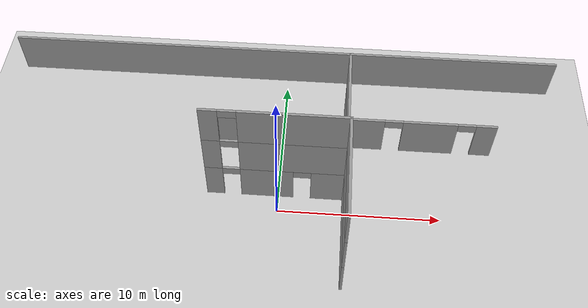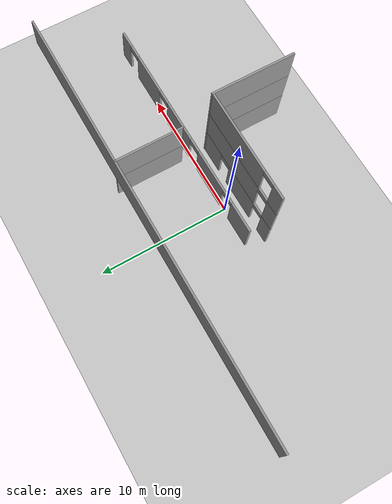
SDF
<sdf version="1.6">
 <world name="default">
  <model name="ground_plane">
   <static>1</static>
   <link name="link">
    <collision name="collision">
     <geometry><plane><normal>0 0 1</normal><size>100 100</size></plane></geometry>
     <surface>
      <contact><collide_bitmask>65535</collide_bitmask></contact>
      <friction><ode><mu>100</mu><mu2>50</mu2></ode></friction>
     </surface>
    </collision>
    <visual name="visual">
     <cast_shadows>0</cast_shadows>
     <geometry><plane><normal>0 0 1</normal><size>100 100</size></plane></geometry>
     <material>
      <script><uri>file://media/materials/scripts/gazebo.material</uri><name>Gazebo/Grey</name></script>
     </material>
    </visual>
   </link>
  </model>
  <model name="floor2plan_v2">
   <link name="Wall_105">
    <pose>4.0241 1.47672 5 0 -0 0</pose>
    <visual name="Wall_105_Visual_0">
     <pose>-7.0665 0 1.25 0 -0 0</pose>
     <geometry><box><size>2.117 0.15 2.5</size></box></geometry>
     <material>
      <script><uri>file://media/materials/scripts/gazebo.material</uri><name>Gazebo/Grey</name></script>
      <ambient>1 1 1 1</ambient>
      <shader type="pixel"/>
      <diffuse>0.7 0.7 0.7 1</diffuse>
      <specular>0.01 0.01 0.01 1</specular>
      <emissive>0 0 0 1</emissive>
     </material>
     <meta><layer>2</layer></meta>
    </visual>
    <visual name="Wall_105_Visual_1">
     <pose>-3.4955 0 1.25 0 -0 0</pose>
     <geometry><box><size>3.025 0.15 2.5</size></box></geometry>
     <material>
      <script><uri>file://media/materials/scripts/gazebo.material</uri><name>Gazebo/Grey</name></script>
      <ambient>1 1 1 1</ambient>
      <shader type="pixel"/>
      <diffuse>0.7 0.7 0.7 1</diffuse>
      <specular>0.01 0.01 0.01 1</specular>
      <emissive>0 0 0 1</emissive>
     </material>
     <meta><layer>2</layer></meta>
    </visual>
    <visual name="Wall_105_Visual_2">
     <pose>0.495 0 1.25 0 -0 0</pose>
     <geometry><box><size>2.956 0.15 2.5</size></box></geometry>
     <material>
      <script><uri>file://media/materials/scripts/gazebo.material</uri><name>Gazebo/Grey</name></script>
      <ambient>1 1 1 1</ambient>
      <shader type="pixel"/>
      <diffuse>0.7 0.7 0.7 1</diffuse>
      <specular>0.01 0.01 0.01 1</specular>
      <emissive>0 0 0 1</emissive>
     </material>
     <meta><layer>2</layer></meta>
    </visual>
    <visual name="Wall_105_Visual_3">
     <pose>4.474 0 1.25 0 -0 0</pose>
     <geometry><box><size>3.002 0.15 2.5</size></box></geometry>
     <material>
      <script><uri>file://media/materials/scripts/gazebo.material</uri><name>Gazebo/Grey</name></script>
      <ambient>1 1 1 1</ambient>
      <shader type="pixel"/>
      <diffuse>0.7 0.7 0.7 1</diffuse>
      <specular>0.01 0.01 0.01 1</specular>
      <emissive>0 0 0 1</emissive>
     </material>
     <meta><layer>2</layer></meta>
    </visual>
    <visual name="Wall_105_Visual_4">
     <pose>7.55 0 1.25 0 -0 0</pose>
     <geometry><box><size>1.15 0.15 2.5</size></box></geometry>
     <material>
      <script><uri>file://media/materials/scripts/gazebo.material</uri><name>Gazebo/Grey</name></script>
      <ambient>1 1 1 1</ambient>
      <shader type="pixel"/>
      <diffuse>0.7 0.7 0.7 1</diffuse>
      <specular>0.01 0.01 0.01 1</specular>
      <emissive>0 0 0 1</emissive>
     </material>
     <meta><layer>2</layer></meta>
    </visual>
    <visual name="Wall_105_Visual_5">
     <pose>-5.508 0 2.25 0 -0 0</pose>
     <geometry><box><size>1 0.15 0.5</size></box></geometry>
     <material>
      <script><uri>file://media/materials/scripts/gazebo.material</uri><name>Gazebo/Grey</name></script>
      <ambient>1 1 1 1</ambient>
      <shader type="pixel"/>
      <diffuse>0.7 0.7 0.7 1</diffuse>
      <specular>0.01 0.01 0.01 1</specular>
      <emissive>0 0 0 1</emissive>
     </material>
     <meta><layer>2</layer></meta>
    </visual>
    <visual name="Wall_105_Visual_6">
     <pose>-1.483 0 2.25 0 -0 0</pose>
     <geometry><box><size>1 0.15 0.5</size></box></geometry>
     <material>
      <script><uri>file://media/materials/scripts/gazebo.material</uri><name>Gazebo/Grey</name></script>
      <ambient>1 1 1 1</ambient>
      <shader type="pixel"/>
      <diffuse>0.7 0.7 0.7 1</diffuse>
      <specular>0.01 0.01 0.01 1</specular>
      <emissive>0 0 0 1</emissive>
     </material>
     <meta><layer>2</layer></meta>
    </visual>
    <visual name="Wall_105_Visual_7">
     <pose>2.473 0 2.25 0 -0 0</pose>
     <geometry><box><size>1 0.15 0.5</size></box></geometry>
     <material>
      <script><uri>file://media/materials/scripts/gazebo.material</uri><name>Gazebo/Grey</name></script>
      <ambient>1 1 1 1</ambient>
      <shader type="pixel"/>
      <diffuse>0.7 0.7 0.7 1</diffuse>
      <specular>0.01 0.01 0.01 1</specular>
      <emissive>0 0 0 1</emissive>
     </material>
     <meta><layer>2</layer></meta>
    </visual>
    <visual name="Wall_105_Visual_8">
     <pose>6.475 0 2.25 0 -0 0</pose>
     <geometry><box><size>1 0.15 0.5</size></box></geometry>
     <material>
      <script><uri>file://media/materials/scripts/gazebo.material</uri><name>Gazebo/Grey</name></script>
      <ambient>1 1 1 1</ambient>
      <shader type="pixel"/>
      <diffuse>0.7 0.7 0.7 1</diffuse>
      <specular>0.01 0.01 0.01 1</specular>
      <emissive>0 0 0 1</emissive>
     </material>
     <meta><layer>2</layer></meta>
    </visual>
    <collision name="Wall_105_Collision_0">
     <pose>-7.0665 0 1.25 0 -0 0</pose>
     <geometry><box><size>2.117 0.15 2.5</size></box></geometry>
     <surface>
      <friction>
       <ode><mu>1</mu><mu2>1</mu2><fdir1>0 0 0</fdir1><slip1>0</slip1><slip2>0</slip2></ode>
       <torsional>
        <coefficient>1</coefficient>
        <patch_radius>0</patch_radius>
        <surface_radius>0</surface_radius>
        <use_patch_radius>1</use_patch_radius>
        <ode><slip>0</slip></ode>
       </torsional>
      </friction>
      <bounce><restitution_coefficient>0</restitution_coefficient><threshold>1e+06</threshold></bounce>
      <contact>
       <collide_without_contact>0</collide_without_contact>
       <collide_without_contact_bitmask>1</collide_without_contact_bitmask>
       <collide_bitmask>1</collide_bitmask>
       <ode>
        <soft_cfm>0</soft_cfm>
        <soft_erp>0.2</soft_erp>
        <kp>1e+13</kp>
        <kd>1</kd>
        <max_vel>0.01</max_vel>
        <min_depth>0</min_depth>
       </ode>
       <bullet>
        <split_impulse>1</split_impulse>
        <split_impulse_penetration_threshold>-0.01</split_impulse_penetration_threshold>
        <soft_cfm>0</soft_cfm>
        <soft_erp>0.2</soft_erp>
        <kp>1e+13</kp>
        <kd>1</kd>
       </bullet>
      </contact>
     </surface>
    </collision>
    <collision name="Wall_105_Collision_1">
     <pose>-3.4955 0 1.25 0 -0 0</pose>
     <geometry><box><size>3.025 0.15 2.5</size></box></geometry>
     <surface>
      <friction>
       <ode><mu>1</mu><mu2>1</mu2><fdir1>0 0 0</fdir1><slip1>0</slip1><slip2>0</slip2></ode>
       <torsional>
        <coefficient>1</coefficient>
        <patch_radius>0</patch_radius>
        <surface_radius>0</surface_radius>
        <use_patch_radius>1</use_patch_radius>
        <ode><slip>0</slip></ode>
       </torsional>
      </friction>
      <bounce><restitution_coefficient>0</restitution_coefficient><threshold>1e+06</threshold></bounce>
      <contact>
       <collide_without_contact>0</collide_without_contact>
       <collide_without_contact_bitmask>1</collide_without_contact_bitmask>
       <collide_bitmask>1</collide_bitmask>
       <ode>
        <soft_cfm>0</soft_cfm>
        <soft_erp>0.2</soft_erp>
        <kp>1e+13</kp>
        <kd>1</kd>
        <max_vel>0.01</max_vel>
        <min_depth>0</min_depth>
       </ode>
       <bullet>
        <split_impulse>1</split_impulse>
        <split_impulse_penetration_threshold>-0.01</split_impulse_penetration_threshold>
        <soft_cfm>0</soft_cfm>
        <soft_erp>0.2</soft_erp>
        <kp>1e+13</kp>
        <kd>1</kd>
       </bullet>
      </contact>
     </surface>
    </collision>
    <collision name="Wall_105_Collision_2">
     <pose>0.495 0 1.25 0 -0 0</pose>
     <geometry><box><size>2.956 0.15 2.5</size></box></geometry>
     <surface>
      <friction>
       <ode><mu>1</mu><mu2>1</mu2><fdir1>0 0 0</fdir1><slip1>0</slip1><slip2>0</slip2></ode>
       <torsional>
        <coefficient>1</coefficient>
        <patch_radius>0</patch_radius>
        <surface_radius>0</surface_radius>
        <use_patch_radius>1</use_patch_radius>
        <ode><slip>0</slip></ode>
       </torsional>
      </friction>
      <bounce><restitution_coefficient>0</restitution_coefficient><threshold>1e+06</threshold></bounce>
      <contact>
       <collide_without_contact>0</collide_without_contact>
       <collide_without_contact_bitmask>1</collide_without_contact_bitmask>
       <collide_bitmask>1</collide_bitmask>
       <ode>
        <soft_cfm>0</soft_cfm>
        <soft_erp>0.2</soft_erp>
        <kp>1e+13</kp>
        <kd>1</kd>
        <max_vel>0.01</max_vel>
        <min_depth>0</min_depth>
       </ode>
       <bullet>
        <split_impulse>1</split_impulse>
        <split_impulse_penetration_threshold>-0.01</split_impulse_penetration_threshold>
        <soft_cfm>0</soft_cfm>
        <soft_erp>0.2</soft_erp>
        <kp>1e+13</kp>
        <kd>1</kd>
       </bullet>
      </contact>
     </surface>
    </collision>
    <collision name="Wall_105_Collision_3">
     <pose>4.474 0 1.25 0 -0 0</pose>
     <geometry><box><size>3.002 0.15 2.5</size></box></geometry>
     <surface>
      <friction>
       <ode><mu>1</mu><mu2>1</mu2><fdir1>0 0 0</fdir1><slip1>0</slip1><slip2>0</slip2></ode>
       <torsional>
        <coefficient>1</coefficient>
        <patch_radius>0</patch_radius>
        <surface_radius>0</surface_radius>
        <use_patch_radius>1</use_patch_radius>
        <ode><slip>0</slip></ode>
       </torsional>
      </friction>
      <bounce><restitution_coefficient>0</restitution_coefficient><threshold>1e+06</threshold></bounce>
      <contact>
       <collide_without_contact>0</collide_without_contact>
       <collide_without_contact_bitmask>1</collide_without_contact_bitmask>
       <collide_bitmask>1</collide_bitmask>
       <ode>
        <soft_cfm>0</soft_cfm>
        <soft_erp>0.2</soft_erp>
        <kp>1e+13</kp>
        <kd>1</kd>
        <max_vel>0.01</max_vel>
        <min_depth>0</min_depth>
       </ode>
       <bullet>
        <split_impulse>1</split_impulse>
        <split_impulse_penetration_threshold>-0.01</split_impulse_penetration_threshold>
        <soft_cfm>0</soft_cfm>
        <soft_erp>0.2</soft_erp>
        <kp>1e+13</kp>
        <kd>1</kd>
       </bullet>
      </contact>
     </surface>
    </collision>
    <collision name="Wall_105_Collision_4">
     <pose>7.55 0 1.25 0 -0 0</pose>
     <geometry><box><size>1.15 0.15 2.5</size></box></geometry>
     <surface>
      <friction>
       <ode><mu>1</mu><mu2>1</mu2><fdir1>0 0 0</fdir1><slip1>0</slip1><slip2>0</slip2></ode>
       <torsional>
        <coefficient>1</coefficient>
        <patch_radius>0</patch_radius>
        <surface_radius>0</surface_radius>
        <use_patch_radius>1</use_patch_radius>
        <ode><slip>0</slip></ode>
       </torsional>
      </friction>
      <bounce><restitution_coefficient>0</restitution_coefficient><threshold>1e+06</threshold></bounce>
      <contact>
       <collide_without_contact>0</collide_without_contact>
       <collide_without_contact_bitmask>1</collide_without_contact_bitmask>
       <collide_bitmask>1</collide_bitmask>
       <ode>
        <soft_cfm>0</soft_cfm>
        <soft_erp>0.2</soft_erp>
        <kp>1e+13</kp>
        <kd>1</kd>
        <max_vel>0.01</max_vel>
        <min_depth>0</min_depth>
       </ode>
       <bullet>
        <split_impulse>1</split_impulse>
        <split_impulse_penetration_threshold>-0.01</split_impulse_penetration_threshold>
        <soft_cfm>0</soft_cfm>
        <soft_erp>0.2</soft_erp>
        <kp>1e+13</kp>
        <kd>1</kd>
       </bullet>
      </contact>
     </surface>
    </collision>
    <collision name="Wall_105_Collision_5">
     <pose>-5.508 0 2.25 0 -0 0</pose>
     <geometry><box><size>1 0.15 0.5</size></box></geometry>
     <surface>
      <friction>
       <ode><mu>1</mu><mu2>1</mu2><fdir1>0 0 0</fdir1><slip1>0</slip1><slip2>0</slip2></ode>
       <torsional>
        <coefficient>1</coefficient>
        <patch_radius>0</patch_radius>
        <surface_radius>0</surface_radius>
        <use_patch_radius>1</use_patch_radius>
        <ode><slip>0</slip></ode>
       </torsional>
      </friction>
      <bounce><restitution_coefficient>0</restitution_coefficient><threshold>1e+06</threshold></bounce>
      <contact>
       <collide_without_contact>0</collide_without_contact>
       <collide_without_contact_bitmask>1</collide_without_contact_bitmask>
       <collide_bitmask>1</collide_bitmask>
       <ode>
        <soft_cfm>0</soft_cfm>
        <soft_erp>0.2</soft_erp>
        <kp>1e+13</kp>
        <kd>1</kd>
        <max_vel>0.01</max_vel>
        <min_depth>0</min_depth>
       </ode>
       <bullet>
        <split_impulse>1</split_impulse>
        <split_impulse_penetration_threshold>-0.01</split_impulse_penetration_threshold>
        <soft_cfm>0</soft_cfm>
        <soft_erp>0.2</soft_erp>
        <kp>1e+13</kp>
        <kd>1</kd>
       </bullet>
      </contact>
     </surface>
    </collision>
    <collision name="Wall_105_Collision_8">
     <pose>6.475 0 2.25 0 -0 0</pose>
     <geometry><box><size>1 0.15 0.5</size></box></geometry>
     <surface>
      <friction>
       <ode><mu>1</mu><mu2>1</mu2><fdir1>0 0 0</fdir1><slip1>0</slip1><slip2>0</slip2></ode>
       <torsional>
        <coefficient>1</coefficient>
        <patch_radius>0</patch_radius>
        <surface_radius>0</surface_radius>
        <use_patch_radius>1</use_patch_radius>
        <ode><slip>0</slip></ode>
       </torsional>
      </friction>
      <bounce><restitution_coefficient>0</restitution_coefficient><threshold>1e+06</threshold></bounce>
      <contact>
       <collide_without_contact>0</collide_without_contact>
       <collide_without_contact_bitmask>1</collide_without_contact_bitmask>
       <collide_bitmask>1</collide_bitmask>
       <ode>
        <soft_cfm>0</soft_cfm>
        <soft_erp>0.2</soft_erp>
        <kp>1e+13</kp>
        <kd>1</kd>
        <max_vel>0.01</max_vel>
        <min_depth>0</min_depth>
       </ode>
       <bullet>
        <split_impulse>1</split_impulse>
        <split_impulse_penetration_threshold>-0.01</split_impulse_penetration_threshold>
        <soft_cfm>0</soft_cfm>
        <soft_erp>0.2</soft_erp>
        <kp>1e+13</kp>
        <kd>1</kd>
       </bullet>
      </contact>
     </surface>
    </collision>
    <collision name="Wall_105_Collision_6">
     <pose>-1.483 0 2.25 0 -0 0</pose>
     <geometry><box><size>1 0.15 0.5</size></box></geometry>
     <surface>
      <friction>
       <ode><mu>1</mu><mu2>1</mu2><fdir1>0 0 0</fdir1><slip1>0</slip1><slip2>0</slip2></ode>
       <torsional>
        <coefficient>1</coefficient>
        <patch_radius>0</patch_radius>
        <surface_radius>0</surface_radius>
        <use_patch_radius>1</use_patch_radius>
        <ode><slip>0</slip></ode>
       </torsional>
      </friction>
      <bounce><restitution_coefficient>0</restitution_coefficient><threshold>1e+06</threshold></bounce>
      <contact>
       <collide_without_contact>0</collide_without_contact>
       <collide_without_contact_bitmask>1</collide_without_contact_bitmask>
       <collide_bitmask>1</collide_bitmask>
       <ode>
        <soft_cfm>0</soft_cfm>
        <soft_erp>0.2</soft_erp>
        <kp>1e+13</kp>
        <kd>1</kd>
        <max_vel>0.01</max_vel>
        <min_depth>0</min_depth>
       </ode>
       <bullet>
        <split_impulse>1</split_impulse>
        <split_impulse_penetration_threshold>-0.01</split_impulse_penetration_threshold>
        <soft_cfm>0</soft_cfm>
        <soft_erp>0.2</soft_erp>
        <kp>1e+13</kp>
        <kd>1</kd>
       </bullet>
      </contact>
     </surface>
    </collision>
    <collision name="Wall_105_Collision_7">
     <pose>2.473 0 2.25 0 -0 0</pose>
     <geometry><box><size>1 0.15 0.5</size></box></geometry>
     <surface>
      <friction>
       <ode><mu>1</mu><mu2>1</mu2><fdir1>0 0 0</fdir1><slip1>0</slip1><slip2>0</slip2></ode>
       <torsional>
        <coefficient>1</coefficient>
        <patch_radius>0</patch_radius>
        <surface_radius>0</surface_radius>
        <use_patch_radius>1</use_patch_radius>
        <ode><slip>0</slip></ode>
       </torsional>
      </friction>
      <bounce><restitution_coefficient>0</restitution_coefficient><threshold>1e+06</threshold></bounce>
      <contact>
       <collide_without_contact>0</collide_without_contact>
       <collide_without_contact_bitmask>1</collide_without_contact_bitmask>
       <collide_bitmask>1</collide_bitmask>
       <ode>
        <soft_cfm>0</soft_cfm>
        <soft_erp>0.2</soft_erp>
        <kp>1e+13</kp>
        <kd>1</kd>
        <max_vel>0.01</max_vel>
        <min_depth>0</min_depth>
       </ode>
       <bullet>
        <split_impulse>1</split_impulse>
        <split_impulse_penetration_threshold>-0.01</split_impulse_penetration_threshold>
        <soft_cfm>0</soft_cfm>
        <soft_erp>0.2</soft_erp>
        <kp>1e+13</kp>
        <kd>1</kd>
       </bullet>
      </contact>
     </surface>
    </collision>
   </link>
   <link name="Wall_109">
    <pose>4.00541 3.97 5 0 0 -1.5708</pose>
    <visual name="Wall_109_Visual">
     <pose>0 0 1.25 0 -0 0</pose>
     <geometry><box><size>5 0.15 2.5</size></box></geometry>
     <material>
      <script><uri>file://media/materials/scripts/gazebo.material</uri><name>Gazebo/Grey</name></script>
      <ambient>1 1 1 1</ambient>
      <shader type="pixel"/>
      <diffuse>0.7 0.7 0.7 1</diffuse>
      <specular>0.01 0.01 0.01 1</specular>
      <emissive>0 0 0 1</emissive>
     </material>
     <meta><layer>2</layer></meta>
    </visual>
    <collision name="Wall_109_Collision">
     <pose>0 0 1.25 0 -0 0</pose>
     <geometry><box><size>5 0.15 2.5</size></box></geometry>
     <surface>
      <friction>
       <ode><mu>1</mu><mu2>1</mu2><fdir1>0 0 0</fdir1><slip1>0</slip1><slip2>0</slip2></ode>
       <torsional>
        <coefficient>1</coefficient>
        <patch_radius>0</patch_radius>
        <surface_radius>0</surface_radius>
        <use_patch_radius>1</use_patch_radius>
        <ode><slip>0</slip></ode>
       </torsional>
      </friction>
      <bounce><restitution_coefficient>0</restitution_coefficient><threshold>1e+06</threshold></bounce>
      <contact>
       <collide_without_contact>0</collide_without_contact>
       <collide_without_contact_bitmask>1</collide_without_contact_bitmask>
       <collide_bitmask>1</collide_bitmask>
       <ode>
        <soft_cfm>0</soft_cfm>
        <soft_erp>0.2</soft_erp>
        <kp>1e+13</kp>
        <kd>1</kd>
        <max_vel>0.01</max_vel>
        <min_depth>0</min_depth>
       </ode>
       <bullet>
        <split_impulse>1</split_impulse>
        <split_impulse_penetration_threshold>-0.01</split_impulse_penetration_threshold>
        <soft_cfm>0</soft_cfm>
        <soft_erp>0.2</soft_erp>
        <kp>1e+13</kp>
        <kd>1</kd>
       </bullet>
      </contact>
     </surface>
    </collision>
   </link>
   <link name="Wall_115">
    <pose>0.049104 -0.509284 5 0 -0 0</pose>
    <visual name="Wall_115_Visual_0">
     <pose>-3.511 0 1.25 0 -0 0</pose>
     <geometry><box><size>1.024 0.15 2.5</size></box></geometry>
     <material>
      <script><uri>file://media/materials/scripts/gazebo.material</uri><name>Gazebo/Grey</name></script>
      <ambient>1 1 1 1</ambient>
      <shader type="pixel"/>
      <diffuse>0.7 0.7 0.7 1</diffuse>
      <specular>0.01 0.01 0.01 1</specular>
      <emissive>0 0 0 1</emissive>
     </material>
     <meta><layer>2</layer></meta>
    </visual>
    <visual name="Wall_115_Visual_1">
     <pose>1.012 0 1.25 0 -0 0</pose>
     <geometry><box><size>6.022 0.15 2.5</size></box></geometry>
     <material>
      <script><uri>file://media/materials/scripts/gazebo.material</uri><name>Gazebo/Grey</name></script>
      <ambient>1 1 1 1</ambient>
      <shader type="pixel"/>
      <diffuse>0.7 0.7 0.7 1</diffuse>
      <specular>0.01 0.01 0.01 1</specular>
      <emissive>0 0 0 1</emissive>
     </material>
     <meta><layer>2</layer></meta>
    </visual>
    <visual name="Wall_115_Visual_2">
     <pose>-2.499 0 2.25 0 -0 0</pose>
     <geometry><box><size>1 0.15 0.5</size></box></geometry>
     <material>
      <script><uri>file://media/materials/scripts/gazebo.material</uri><name>Gazebo/Grey</name></script>
      <ambient>1 1 1 1</ambient>
      <shader type="pixel"/>
      <diffuse>0.7 0.7 0.7 1</diffuse>
      <specular>0.01 0.01 0.01 1</specular>
      <emissive>0 0 0 1</emissive>
     </material>
     <meta><layer>2</layer></meta>
    </visual>
    <collision name="Wall_115_Collision_0">
     <pose>-3.511 0 1.25 0 -0 0</pose>
     <geometry><box><size>1.024 0.15 2.5</size></box></geometry>
     <surface>
      <friction>
       <ode><mu>1</mu><mu2>1</mu2><fdir1>0 0 0</fdir1><slip1>0</slip1><slip2>0</slip2></ode>
       <torsional>
        <coefficient>1</coefficient>
        <patch_radius>0</patch_radius>
        <surface_radius>0</surface_radius>
        <use_patch_radius>1</use_patch_radius>
        <ode><slip>0</slip></ode>
       </torsional>
      </friction>
      <bounce><restitution_coefficient>0</restitution_coefficient><threshold>1e+06</threshold></bounce>
      <contact>
       <collide_without_contact>0</collide_without_contact>
       <collide_without_contact_bitmask>1</collide_without_contact_bitmask>
       <collide_bitmask>1</collide_bitmask>
       <ode>
        <soft_cfm>0</soft_cfm>
        <soft_erp>0.2</soft_erp>
        <kp>1e+13</kp>
        <kd>1</kd>
        <max_vel>0.01</max_vel>
        <min_depth>0</min_depth>
       </ode>
       <bullet>
        <split_impulse>1</split_impulse>
        <split_impulse_penetration_threshold>-0.01</split_impulse_penetration_threshold>
        <soft_cfm>0</soft_cfm>
        <soft_erp>0.2</soft_erp>
        <kp>1e+13</kp>
        <kd>1</kd>
       </bullet>
      </contact>
     </surface>
    </collision>
    <collision name="Wall_115_Collision_1">
     <pose>1.012 0 1.25 0 -0 0</pose>
     <geometry><box><size>6.022 0.15 2.5</size></box></geometry>
     <surface>
      <friction>
       <ode><mu>1</mu><mu2>1</mu2><fdir1>0 0 0</fdir1><slip1>0</slip1><slip2>0</slip2></ode>
       <torsional>
        <coefficient>1</coefficient>
        <patch_radius>0</patch_radius>
        <surface_radius>0</surface_radius>
        <use_patch_radius>1</use_patch_radius>
        <ode><slip>0</slip></ode>
       </torsional>
      </friction>
      <bounce><restitution_coefficient>0</restitution_coefficient><threshold>1e+06</threshold></bounce>
      <contact>
       <collide_without_contact>0</collide_without_contact>
       <collide_without_contact_bitmask>1</collide_without_contact_bitmask>
       <collide_bitmask>1</collide_bitmask>
       <ode>
        <soft_cfm>0</soft_cfm>
        <soft_erp>0.2</soft_erp>
        <kp>1e+13</kp>
        <kd>1</kd>
        <max_vel>0.01</max_vel>
        <min_depth>0</min_depth>
       </ode>
       <bullet>
        <split_impulse>1</split_impulse>
        <split_impulse_penetration_threshold>-0.01</split_impulse_penetration_threshold>
        <soft_cfm>0</soft_cfm>
        <soft_erp>0.2</soft_erp>
        <kp>1e+13</kp>
        <kd>1</kd>
       </bullet>
      </contact>
     </surface>
    </collision>
    <collision name="Wall_115_Collision_2">
     <pose>-2.499 0 2.25 0 -0 0</pose>
     <geometry><box><size>1 0.15 0.5</size></box></geometry>
     <surface>
      <friction>
       <ode><mu>1</mu><mu2>1</mu2><fdir1>0 0 0</fdir1><slip1>0</slip1><slip2>0</slip2></ode>
       <torsional>
        <coefficient>1</coefficient>
        <patch_radius>0</patch_radius>
        <surface_radius>0</surface_radius>
        <use_patch_radius>1</use_patch_radius>
        <ode><slip>0</slip></ode>
       </torsional>
      </friction>
      <bounce><restitution_coefficient>0</restitution_coefficient><threshold>1e+06</threshold></bounce>
      <contact>
       <collide_without_contact>0</collide_without_contact>
       <collide_without_contact_bitmask>1</collide_without_contact_bitmask>
       <collide_bitmask>1</collide_bitmask>
       <ode>
        <soft_cfm>0</soft_cfm>
        <soft_erp>0.2</soft_erp>
        <kp>1e+13</kp>
        <kd>1</kd>
        <max_vel>0.01</max_vel>
        <min_depth>0</min_depth>
       </ode>
       <bullet>
        <split_impulse>1</split_impulse>
        <split_impulse_penetration_threshold>-0.01</split_impulse_penetration_threshold>
        <soft_cfm>0</soft_cfm>
        <soft_erp>0.2</soft_erp>
        <kp>1e+13</kp>
        <kd>1</kd>
       </bullet>
      </contact>
     </surface>
    </collision>
   </link>
   <link name="Wall_118">
    <pose>4.02011 -3.43428 5 0 0 -1.5708</pose>
    <visual name="Wall_118_Visual">
     <pose>0 0 1.25 0 -0 0</pose>
     <geometry><box><size>6 0.15 2.5</size></box></geometry>
     <material>
      <script><uri>file://media/materials/scripts/gazebo.material</uri><name>Gazebo/Grey</name></script>
      <ambient>1 1 1 1</ambient>
      <shader type="pixel"/>
      <diffuse>0.7 0.7 0.7 1</diffuse>
      <specular>0.01 0.01 0.01 1</specular>
      <emissive>0 0 0 1</emissive>
     </material>
     <meta><layer>2</layer></meta>
    </visual>
    <collision name="Wall_118_Collision">
     <pose>0 0 1.25 0 -0 0</pose>
     <geometry><box><size>6 0.15 2.5</size></box></geometry>
     <surface>
      <friction>
       <ode><mu>1</mu><mu2>1</mu2><fdir1>0 0 0</fdir1><slip1>0</slip1><slip2>0</slip2></ode>
       <torsional>
        <coefficient>1</coefficient>
        <patch_radius>0</patch_radius>
        <surface_radius>0</surface_radius>
        <use_patch_radius>1</use_patch_radius>
        <ode><slip>0</slip></ode>
       </torsional>
      </friction>
      <bounce><restitution_coefficient>0</restitution_coefficient><threshold>1e+06</threshold></bounce>
      <contact>
       <collide_without_contact>0</collide_without_contact>
       <collide_without_contact_bitmask>1</collide_without_contact_bitmask>
       <collide_bitmask>1</collide_bitmask>
       <ode>
        <soft_cfm>0</soft_cfm>
        <soft_erp>0.2</soft_erp>
        <kp>1e+13</kp>
        <kd>1</kd>
        <max_vel>0.01</max_vel>
        <min_depth>0</min_depth>
       </ode>
       <bullet>
        <split_impulse>1</split_impulse>
        <split_impulse_penetration_threshold>-0.01</split_impulse_penetration_threshold>
        <soft_cfm>0</soft_cfm>
        <soft_erp>0.2</soft_erp>
        <kp>1e+13</kp>
        <kd>1</kd>
       </bullet>
      </contact>
     </surface>
    </collision>
   </link>
   <link name="Wall_141">
    <pose>0.049104 -0.509284 7.5 0 -0 0</pose>
    <visual name="Wall_141_Visual_0">
     <pose>-3.511 0 1.25 0 -0 0</pose>
     <geometry><box><size>1.024 0.15 2.5</size></box></geometry>
     <material>
      <script><uri>file://media/materials/scripts/gazebo.material</uri><name>Gazebo/Grey</name></script>
      <ambient>1 1 1 1</ambient>
      <shader type="pixel"/>
      <diffuse>0.7 0.7 0.7 1</diffuse>
      <specular>0.01 0.01 0.01 1</specular>
      <emissive>0 0 0 1</emissive>
     </material>
     <meta><layer>3</layer></meta>
    </visual>
    <visual name="Wall_141_Visual_1">
     <pose>1.012 0 1.25 0 -0 0</pose>
     <geometry><box><size>6.022 0.15 2.5</size></box></geometry>
     <material>
      <script><uri>file://media/materials/scripts/gazebo.material</uri><name>Gazebo/Grey</name></script>
      <ambient>1 1 1 1</ambient>
      <shader type="pixel"/>
      <diffuse>0.7 0.7 0.7 1</diffuse>
      <specular>0.01 0.01 0.01 1</specular>
      <emissive>0 0 0 1</emissive>
     </material>
     <meta><layer>3</layer></meta>
    </visual>
    <visual name="Wall_141_Visual_2">
     <pose>-2.499 0 2.25 0 -0 0</pose>
     <geometry><box><size>1 0.15 0.5</size></box></geometry>
     <material>
      <script><uri>file://media/materials/scripts/gazebo.material</uri><name>Gazebo/Grey</name></script>
      <ambient>1 1 1 1</ambient>
      <shader type="pixel"/>
      <diffuse>0.7 0.7 0.7 1</diffuse>
      <specular>0.01 0.01 0.01 1</specular>
      <emissive>0 0 0 1</emissive>
     </material>
     <meta><layer>3</layer></meta>
    </visual>
    <collision name="Wall_141_Collision_0">
     <pose>-3.511 0 1.25 0 -0 0</pose>
     <geometry><box><size>1.024 0.15 2.5</size></box></geometry>
     <surface>
      <friction>
       <ode><mu>1</mu><mu2>1</mu2><fdir1>0 0 0</fdir1><slip1>0</slip1><slip2>0</slip2></ode>
       <torsional>
        <coefficient>1</coefficient>
        <patch_radius>0</patch_radius>
        <surface_radius>0</surface_radius>
        <use_patch_radius>1</use_patch_radius>
        <ode><slip>0</slip></ode>
       </torsional>
      </friction>
      <bounce><restitution_coefficient>0</restitution_coefficient><threshold>1e+06</threshold></bounce>
      <contact>
       <collide_without_contact>0</collide_without_contact>
       <collide_without_contact_bitmask>1</collide_without_contact_bitmask>
       <collide_bitmask>1</collide_bitmask>
       <ode>
        <soft_cfm>0</soft_cfm>
        <soft_erp>0.2</soft_erp>
        <kp>1e+13</kp>
        <kd>1</kd>
        <max_vel>0.01</max_vel>
        <min_depth>0</min_depth>
       </ode>
       <bullet>
        <split_impulse>1</split_impulse>
        <split_impulse_penetration_threshold>-0.01</split_impulse_penetration_threshold>
        <soft_cfm>0</soft_cfm>
        <soft_erp>0.2</soft_erp>
        <kp>1e+13</kp>
        <kd>1</kd>
       </bullet>
      </contact>
     </surface>
    </collision>
    <collision name="Wall_141_Collision_1">
     <pose>1.012 0 1.25 0 -0 0</pose>
     <geometry><box><size>6.022 0.15 2.5</size></box></geometry>
     <surface>
      <friction>
       <ode><mu>1</mu><mu2>1</mu2><fdir1>0 0 0</fdir1><slip1>0</slip1><slip2>0</slip2></ode>
       <torsional>
        <coefficient>1</coefficient>
        <patch_radius>0</patch_radius>
        <surface_radius>0</surface_radius>
        <use_patch_radius>1</use_patch_radius>
        <ode><slip>0</slip></ode>
       </torsional>
      </friction>
      <bounce><restitution_coefficient>0</restitution_coefficient><threshold>1e+06</threshold></bounce>
      <contact>
       <collide_without_contact>0</collide_without_contact>
       <collide_without_contact_bitmask>1</collide_without_contact_bitmask>
       <collide_bitmask>1</collide_bitmask>
       <ode>
        <soft_cfm>0</soft_cfm>
        <soft_erp>0.2</soft_erp>
        <kp>1e+13</kp>
        <kd>1</kd>
        <max_vel>0.01</max_vel>
        <min_depth>0</min_depth>
       </ode>
       <bullet>
        <split_impulse>1</split_impulse>
        <split_impulse_penetration_threshold>-0.01</split_impulse_penetration_threshold>
        <soft_cfm>0</soft_cfm>
        <soft_erp>0.2</soft_erp>
        <kp>1e+13</kp>
        <kd>1</kd>
       </bullet>
      </contact>
     </surface>
    </collision>
    <collision name="Wall_141_Collision_2">
     <pose>-2.499 0 2.25 0 -0 0</pose>
     <geometry><box><size>1 0.15 0.5</size></box></geometry>
     <surface>
      <friction>
       <ode><mu>1</mu><mu2>1</mu2><fdir1>0 0 0</fdir1><slip1>0</slip1><slip2>0</slip2></ode>
       <torsional>
        <coefficient>1</coefficient>
        <patch_radius>0</patch_radius>
        <surface_radius>0</surface_radius>
        <use_patch_radius>1</use_patch_radius>
        <ode><slip>0</slip></ode>
       </torsional>
      </friction>
      <bounce><restitution_coefficient>0</restitution_coefficient><threshold>1e+06</threshold></bounce>
      <contact>
       <collide_without_contact>0</collide_without_contact>
       <collide_without_contact_bitmask>1</collide_without_contact_bitmask>
       <collide_bitmask>1</collide_bitmask>
       <ode>
        <soft_cfm>0</soft_cfm>
        <soft_erp>0.2</soft_erp>
        <kp>1e+13</kp>
        <kd>1</kd>
        <max_vel>0.01</max_vel>
        <min_depth>0</min_depth>
       </ode>
       <bullet>
        <split_impulse>1</split_impulse>
        <split_impulse_penetration_threshold>-0.01</split_impulse_penetration_threshold>
        <soft_cfm>0</soft_cfm>
        <soft_erp>0.2</soft_erp>
        <kp>1e+13</kp>
        <kd>1</kd>
       </bullet>
      </contact>
     </surface>
    </collision>
   </link>
   <link name="Wall_144">
    <pose>4.02011 -3.43428 7.5 0 0 -1.5708</pose>
    <visual name="Wall_144_Visual">
     <pose>0 0 1.25 0 -0 0</pose>
     <geometry><box><size>6 0.15 2.5</size></box></geometry>
     <material>
      <script><uri>file://media/materials/scripts/gazebo.material</uri><name>Gazebo/Grey</name></script>
      <ambient>1 1 1 1</ambient>
      <shader type="pixel"/>
      <diffuse>0.7 0.7 0.7 1</diffuse>
      <specular>0.01 0.01 0.01 1</specular>
      <emissive>0 0 0 1</emissive>
     </material>
     <meta><layer>3</layer></meta>
    </visual>
    <collision name="Wall_144_Collision">
     <pose>0 0 1.25 0 -0 0</pose>
     <geometry><box><size>6 0.15 2.5</size></box></geometry>
     <surface>
      <friction>
       <ode><mu>1</mu><mu2>1</mu2><fdir1>0 0 0</fdir1><slip1>0</slip1><slip2>0</slip2></ode>
       <torsional>
        <coefficient>1</coefficient>
        <patch_radius>0</patch_radius>
        <surface_radius>0</surface_radius>
        <use_patch_radius>1</use_patch_radius>
        <ode><slip>0</slip></ode>
       </torsional>
      </friction>
      <bounce><restitution_coefficient>0</restitution_coefficient><threshold>1e+06</threshold></bounce>
      <contact>
       <collide_without_contact>0</collide_without_contact>
       <collide_without_contact_bitmask>1</collide_without_contact_bitmask>
       <collide_bitmask>1</collide_bitmask>
       <ode>
        <soft_cfm>0</soft_cfm>
        <soft_erp>0.2</soft_erp>
        <kp>1e+13</kp>
        <kd>1</kd>
        <max_vel>0.01</max_vel>
        <min_depth>0</min_depth>
       </ode>
       <bullet>
        <split_impulse>1</split_impulse>
        <split_impulse_penetration_threshold>-0.01</split_impulse_penetration_threshold>
        <soft_cfm>0</soft_cfm>
        <soft_erp>0.2</soft_erp>
        <kp>1e+13</kp>
        <kd>1</kd>
       </bullet>
      </contact>
     </surface>
    </collision>
   </link>
   <link name="Wall_83">
    <pose>4.00541 3.97 2.5 0 0 -1.5708</pose>
    <visual name="Wall_83_Visual">
     <pose>0 0 1.25 0 -0 0</pose>
     <geometry><box><size>5 0.15 2.5</size></box></geometry>
     <material>
      <script><uri>file://media/materials/scripts/gazebo.material</uri><name>Gazebo/Grey</name></script>
      <ambient>1 1 1 1</ambient>
      <shader type="pixel"/>
      <diffuse>0.7 0.7 0.7 1</diffuse>
      <specular>0.01 0.01 0.01 1</specular>
      <emissive>0 0 0 1</emissive>
     </material>
     <meta><layer>1</layer></meta>
    </visual>
    <collision name="Wall_83_Collision">
     <pose>0 0 1.25 0 -0 0</pose>
     <geometry><box><size>5 0.15 2.5</size></box></geometry>
     <surface>
      <friction>
       <ode><mu>1</mu><mu2>1</mu2><fdir1>0 0 0</fdir1><slip1>0</slip1><slip2>0</slip2></ode>
       <torsional>
        <coefficient>1</coefficient>
        <patch_radius>0</patch_radius>
        <surface_radius>0</surface_radius>
        <use_patch_radius>1</use_patch_radius>
        <ode><slip>0</slip></ode>
       </torsional>
      </friction>
      <bounce><restitution_coefficient>0</restitution_coefficient><threshold>1e+06</threshold></bounce>
      <contact>
       <collide_without_contact>0</collide_without_contact>
       <collide_without_contact_bitmask>1</collide_without_contact_bitmask>
       <collide_bitmask>1</collide_bitmask>
       <ode>
        <soft_cfm>0</soft_cfm>
        <soft_erp>0.2</soft_erp>
        <kp>1e+13</kp>
        <kd>1</kd>
        <max_vel>0.01</max_vel>
        <min_depth>0</min_depth>
       </ode>
       <bullet>
        <split_impulse>1</split_impulse>
        <split_impulse_penetration_threshold>-0.01</split_impulse_penetration_threshold>
        <soft_cfm>0</soft_cfm>
        <soft_erp>0.2</soft_erp>
        <kp>1e+13</kp>
        <kd>1</kd>
       </bullet>
      </contact>
     </surface>
    </collision>
   </link>
   <link name="Wall_89">
    <pose>0.049104 -0.509284 2.5 0 -0 0</pose>
    <visual name="Wall_89_Visual_0">
     <pose>-3.511 0 1.25 0 -0 0</pose>
     <geometry><box><size>1.024 0.15 2.5</size></box></geometry>
     <material>
      <script><uri>file://media/materials/scripts/gazebo.material</uri><name>Gazebo/Grey</name></script>
      <ambient>1 1 1 1</ambient>
      <shader type="pixel"/>
      <diffuse>0.7 0.7 0.7 1</diffuse>
      <specular>0.01 0.01 0.01 1</specular>
      <emissive>0 0 0 1</emissive>
     </material>
     <meta><layer>1</layer></meta>
    </visual>
    <visual name="Wall_89_Visual_1">
     <pose>-0.4865 0 1.25 0 -0 0</pose>
     <geometry><box><size>3.025 0.15 2.5</size></box></geometry>
     <material>
      <script><uri>file://media/materials/scripts/gazebo.material</uri><name>Gazebo/Grey</name></script>
      <ambient>1 1 1 1</ambient>
      <shader type="pixel"/>
      <diffuse>0.7 0.7 0.7 1</diffuse>
      <specular>0.01 0.01 0.01 1</specular>
      <emissive>0 0 0 1</emissive>
     </material>
     <meta><layer>1</layer></meta>
    </visual>
    <visual name="Wall_89_Visual_2">
     <pose>3.0245 0 1.25 0 -0 0</pose>
     <geometry><box><size>1.997 0.15 2.5</size></box></geometry>
     <material>
      <script><uri>file://media/materials/scripts/gazebo.material</uri><name>Gazebo/Grey</name></script>
      <ambient>1 1 1 1</ambient>
      <shader type="pixel"/>
      <diffuse>0.7 0.7 0.7 1</diffuse>
      <specular>0.01 0.01 0.01 1</specular>
      <emissive>0 0 0 1</emissive>
     </material>
     <meta><layer>1</layer></meta>
    </visual>
    <visual name="Wall_89_Visual_3">
     <pose>-2.499 0 2.25 0 -0 0</pose>
     <geometry><box><size>1 0.15 0.5</size></box></geometry>
     <material>
      <script><uri>file://media/materials/scripts/gazebo.material</uri><name>Gazebo/Grey</name></script>
      <ambient>1 1 1 1</ambient>
      <shader type="pixel"/>
      <diffuse>0.7 0.7 0.7 1</diffuse>
      <specular>0.01 0.01 0.01 1</specular>
      <emissive>0 0 0 1</emissive>
     </material>
     <meta><layer>1</layer></meta>
    </visual>
    <visual name="Wall_89_Visual_4">
     <pose>1.526 0 2.25 0 -0 0</pose>
     <geometry><box><size>1 0.15 0.5</size></box></geometry>
     <material>
      <script><uri>file://media/materials/scripts/gazebo.material</uri><name>Gazebo/Grey</name></script>
      <ambient>1 1 1 1</ambient>
      <shader type="pixel"/>
      <diffuse>0.7 0.7 0.7 1</diffuse>
      <specular>0.01 0.01 0.01 1</specular>
      <emissive>0 0 0 1</emissive>
     </material>
     <meta><layer>1</layer></meta>
    </visual>
    <collision name="Wall_89_Collision_0">
     <pose>-3.511 0 1.25 0 -0 0</pose>
     <geometry><box><size>1.024 0.15 2.5</size></box></geometry>
     <surface>
      <friction>
       <ode><mu>1</mu><mu2>1</mu2><fdir1>0 0 0</fdir1><slip1>0</slip1><slip2>0</slip2></ode>
       <torsional>
        <coefficient>1</coefficient>
        <patch_radius>0</patch_radius>
        <surface_radius>0</surface_radius>
        <use_patch_radius>1</use_patch_radius>
        <ode><slip>0</slip></ode>
       </torsional>
      </friction>
      <bounce><restitution_coefficient>0</restitution_coefficient><threshold>1e+06</threshold></bounce>
      <contact>
       <collide_without_contact>0</collide_without_contact>
       <collide_without_contact_bitmask>1</collide_without_contact_bitmask>
       <collide_bitmask>1</collide_bitmask>
       <ode>
        <soft_cfm>0</soft_cfm>
        <soft_erp>0.2</soft_erp>
        <kp>1e+13</kp>
        <kd>1</kd>
        <max_vel>0.01</max_vel>
        <min_depth>0</min_depth>
       </ode>
       <bullet>
        <split_impulse>1</split_impulse>
        <split_impulse_penetration_threshold>-0.01</split_impulse_penetration_threshold>
        <soft_cfm>0</soft_cfm>
        <soft_erp>0.2</soft_erp>
        <kp>1e+13</kp>
        <kd>1</kd>
       </bullet>
      </contact>
     </surface>
    </collision>
    <collision name="Wall_89_Collision_1">
     <pose>-0.4865 0 1.25 0 -0 0</pose>
     <geometry><box><size>3.025 0.15 2.5</size></box></geometry>
     <surface>
      <friction>
       <ode><mu>1</mu><mu2>1</mu2><fdir1>0 0 0</fdir1><slip1>0</slip1><slip2>0</slip2></ode>
       <torsional>
        <coefficient>1</coefficient>
        <patch_radius>0</patch_radius>
        <surface_radius>0</surface_radius>
        <use_patch_radius>1</use_patch_radius>
        <ode><slip>0</slip></ode>
       </torsional>
      </friction>
      <bounce><restitution_coefficient>0</restitution_coefficient><threshold>1e+06</threshold></bounce>
      <contact>
       <collide_without_contact>0</collide_without_contact>
       <collide_without_contact_bitmask>1</collide_without_contact_bitmask>
       <collide_bitmask>1</collide_bitmask>
       <ode>
        <soft_cfm>0</soft_cfm>
        <soft_erp>0.2</soft_erp>
        <kp>1e+13</kp>
        <kd>1</kd>
        <max_vel>0.01</max_vel>
        <min_depth>0</min_depth>
       </ode>
       <bullet>
        <split_impulse>1</split_impulse>
        <split_impulse_penetration_threshold>-0.01</split_impulse_penetration_threshold>
        <soft_cfm>0</soft_cfm>
        <soft_erp>0.2</soft_erp>
        <kp>1e+13</kp>
        <kd>1</kd>
       </bullet>
      </contact>
     </surface>
    </collision>
    <collision name="Wall_89_Collision_2">
     <pose>3.0245 0 1.25 0 -0 0</pose>
     <geometry><box><size>1.997 0.15 2.5</size></box></geometry>
     <surface>
      <friction>
       <ode><mu>1</mu><mu2>1</mu2><fdir1>0 0 0</fdir1><slip1>0</slip1><slip2>0</slip2></ode>
       <torsional>
        <coefficient>1</coefficient>
        <patch_radius>0</patch_radius>
        <surface_radius>0</surface_radius>
        <use_patch_radius>1</use_patch_radius>
        <ode><slip>0</slip></ode>
       </torsional>
      </friction>
      <bounce><restitution_coefficient>0</restitution_coefficient><threshold>1e+06</threshold></bounce>
      <contact>
       <collide_without_contact>0</collide_without_contact>
       <collide_without_contact_bitmask>1</collide_without_contact_bitmask>
       <collide_bitmask>1</collide_bitmask>
       <ode>
        <soft_cfm>0</soft_cfm>
        <soft_erp>0.2</soft_erp>
        <kp>1e+13</kp>
        <kd>1</kd>
        <max_vel>0.01</max_vel>
        <min_depth>0</min_depth>
       </ode>
       <bullet>
        <split_impulse>1</split_impulse>
        <split_impulse_penetration_threshold>-0.01</split_impulse_penetration_threshold>
        <soft_cfm>0</soft_cfm>
        <soft_erp>0.2</soft_erp>
        <kp>1e+13</kp>
        <kd>1</kd>
       </bullet>
      </contact>
     </surface>
    </collision>
    <collision name="Wall_89_Collision_3">
     <pose>-2.499 0 2.25 0 -0 0</pose>
     <geometry><box><size>1 0.15 0.5</size></box></geometry>
     <surface>
      <friction>
       <ode><mu>1</mu><mu2>1</mu2><fdir1>0 0 0</fdir1><slip1>0</slip1><slip2>0</slip2></ode>
       <torsional>
        <coefficient>1</coefficient>
        <patch_radius>0</patch_radius>
        <surface_radius>0</surface_radius>
        <use_patch_radius>1</use_patch_radius>
        <ode><slip>0</slip></ode>
       </torsional>
      </friction>
      <bounce><restitution_coefficient>0</restitution_coefficient><threshold>1e+06</threshold></bounce>
      <contact>
       <collide_without_contact>0</collide_without_contact>
       <collide_without_contact_bitmask>1</collide_without_contact_bitmask>
       <collide_bitmask>1</collide_bitmask>
       <ode>
        <soft_cfm>0</soft_cfm>
        <soft_erp>0.2</soft_erp>
        <kp>1e+13</kp>
        <kd>1</kd>
        <max_vel>0.01</max_vel>
        <min_depth>0</min_depth>
       </ode>
       <bullet>
        <split_impulse>1</split_impulse>
        <split_impulse_penetration_threshold>-0.01</split_impulse_penetration_threshold>
        <soft_cfm>0</soft_cfm>
        <soft_erp>0.2</soft_erp>
        <kp>1e+13</kp>
        <kd>1</kd>
       </bullet>
      </contact>
     </surface>
    </collision>
    <collision name="Wall_89_Collision_4">
     <pose>1.526 0 2.25 0 -0 0</pose>
     <geometry><box><size>1 0.15 0.5</size></box></geometry>
     <surface>
      <friction>
       <ode><mu>1</mu><mu2>1</mu2><fdir1>0 0 0</fdir1><slip1>0</slip1><slip2>0</slip2></ode>
       <torsional>
        <coefficient>1</coefficient>
        <patch_radius>0</patch_radius>
        <surface_radius>0</surface_radius>
        <use_patch_radius>1</use_patch_radius>
        <ode><slip>0</slip></ode>
       </torsional>
      </friction>
      <bounce><restitution_coefficient>0</restitution_coefficient><threshold>1e+06</threshold></bounce>
      <contact>
       <collide_without_contact>0</collide_without_contact>
       <collide_without_contact_bitmask>1</collide_without_contact_bitmask>
       <collide_bitmask>1</collide_bitmask>
       <ode>
        <soft_cfm>0</soft_cfm>
        <soft_erp>0.2</soft_erp>
        <kp>1e+13</kp>
        <kd>1</kd>
        <max_vel>0.01</max_vel>
        <min_depth>0</min_depth>
       </ode>
       <bullet>
        <split_impulse>1</split_impulse>
        <split_impulse_penetration_threshold>-0.01</split_impulse_penetration_threshold>
        <soft_cfm>0</soft_cfm>
        <soft_erp>0.2</soft_erp>
        <kp>1e+13</kp>
        <kd>1</kd>
       </bullet>
      </contact>
     </surface>
    </collision>
   </link>
   <link name="Wall_92">
    <pose>4.02011 -3.43428 2.5 0 0 -1.5708</pose>
    <visual name="Wall_92_Visual">
     <pose>0 0 1.25 0 -0 0</pose>
     <geometry><box><size>6 0.15 2.5</size></box></geometry>
     <material>
      <script><uri>file://media/materials/scripts/gazebo.material</uri><name>Gazebo/Grey</name></script>
      <ambient>1 1 1 1</ambient>
      <shader type="pixel"/>
      <diffuse>0.7 0.7 0.7 1</diffuse>
      <specular>0.01 0.01 0.01 1</specular>
      <emissive>0 0 0 1</emissive>
     </material>
     <meta><layer>1</layer></meta>
    </visual>
    <collision name="Wall_92_Collision">
     <pose>0 0 1.25 0 -0 0</pose>
     <geometry><box><size>6 0.15 2.5</size></box></geometry>
     <surface>
      <friction>
       <ode><mu>1</mu><mu2>1</mu2><fdir1>0 0 0</fdir1><slip1>0</slip1><slip2>0</slip2></ode>
       <torsional>
        <coefficient>1</coefficient>
        <patch_radius>0</patch_radius>
        <surface_radius>0</surface_radius>
        <use_patch_radius>1</use_patch_radius>
        <ode><slip>0</slip></ode>
       </torsional>
      </friction>
      <bounce><restitution_coefficient>0</restitution_coefficient><threshold>1e+06</threshold></bounce>
      <contact>
       <collide_without_contact>0</collide_without_contact>
       <collide_without_contact_bitmask>1</collide_without_contact_bitmask>
       <collide_bitmask>1</collide_bitmask>
       <ode>
        <soft_cfm>0</soft_cfm>
        <soft_erp>0.2</soft_erp>
        <kp>1e+13</kp>
        <kd>1</kd>
        <max_vel>0.01</max_vel>
        <min_depth>0</min_depth>
       </ode>
       <bullet>
        <split_impulse>1</split_impulse>
        <split_impulse_penetration_threshold>-0.01</split_impulse_penetration_threshold>
        <soft_cfm>0</soft_cfm>
        <soft_erp>0.2</soft_erp>
        <kp>1e+13</kp>
        <kd>1</kd>
       </bullet>
      </contact>
     </surface>
    </collision>
   </link>
   <link name="Wall_98">
    <pose>1e-06 6.4365 5 0 -0 0</pose>
    <visual name="Wall_98_Visual">
     <pose>0 0 1.25 0 -0 0</pose>
     <geometry><box><size>32 0.15 2.5</size></box></geometry>
     <material>
      <script><uri>file://media/materials/scripts/gazebo.material</uri><name>Gazebo/Grey</name></script>
      <ambient>1 1 1 1</ambient>
      <shader type="pixel"/>
      <diffuse>0.7 0.7 0.7 1</diffuse>
      <specular>0.01 0.01 0.01 1</specular>
      <emissive>0 0 0 1</emissive>
     </material>
     <meta><layer>2</layer></meta>
    </visual>
    <collision name="Wall_98_Collision">
     <pose>0 0 1.25 0 -0 0</pose>
     <geometry><box><size>32 0.15 2.5</size></box></geometry>
     <surface>
      <friction>
       <ode><mu>1</mu><mu2>1</mu2><fdir1>0 0 0</fdir1><slip1>0</slip1><slip2>0</slip2></ode>
       <torsional>
        <coefficient>1</coefficient>
        <patch_radius>0</patch_radius>
        <surface_radius>0</surface_radius>
        <use_patch_radius>1</use_patch_radius>
        <ode><slip>0</slip></ode>
       </torsional>
      </friction>
      <bounce><restitution_coefficient>0</restitution_coefficient><threshold>1e+06</threshold></bounce>
      <contact>
       <collide_without_contact>0</collide_without_contact>
       <collide_without_contact_bitmask>1</collide_without_contact_bitmask>
       <collide_bitmask>1</collide_bitmask>
       <ode>
        <soft_cfm>0</soft_cfm>
        <soft_erp>0.2</soft_erp>
        <kp>1e+13</kp>
        <kd>1</kd>
        <max_vel>0.01</max_vel>
        <min_depth>0</min_depth>
       </ode>
       <bullet>
        <split_impulse>1</split_impulse>
        <split_impulse_penetration_threshold>-0.01</split_impulse_penetration_threshold>
        <soft_cfm>0</soft_cfm>
        <soft_erp>0.2</soft_erp>
        <kp>1e+13</kp>
        <kd>1</kd>
       </bullet>
      </contact>
     </surface>
    </collision>
   </link>
   <static>1</static>
   <pose>-0.074109 0.009792 0 0 -0 0</pose>
  </model>
 </world>
</sdf>
